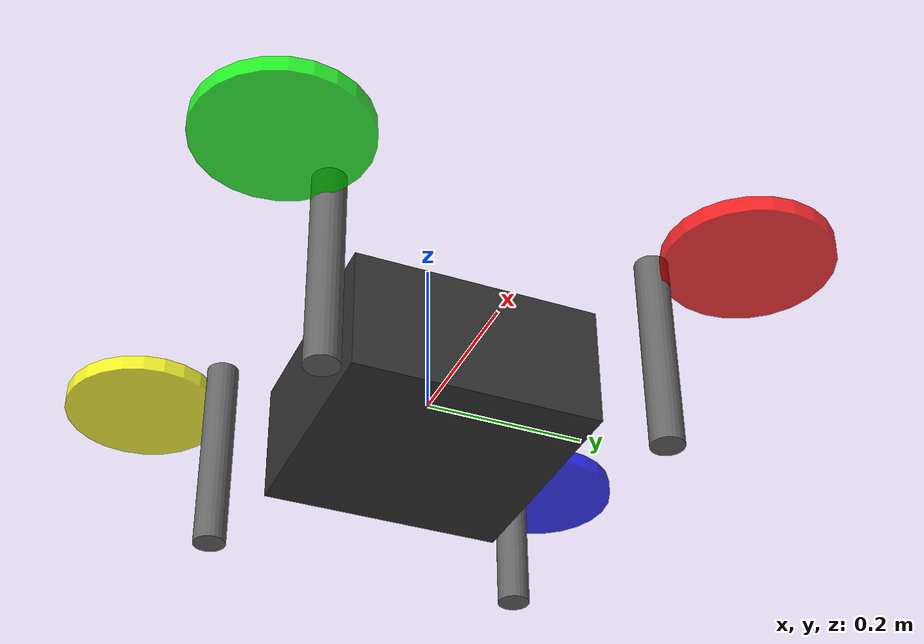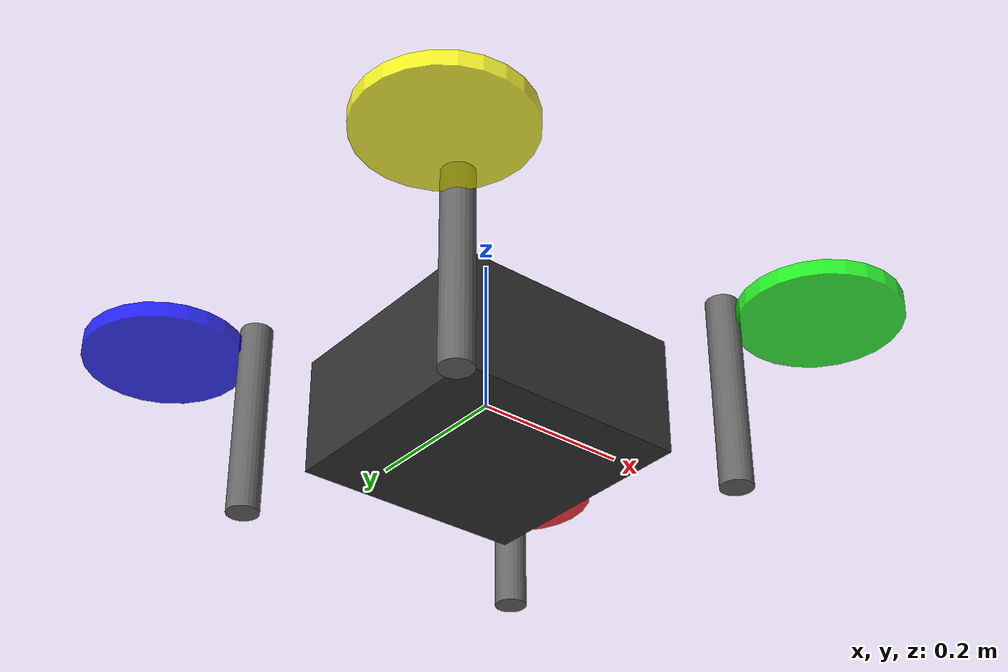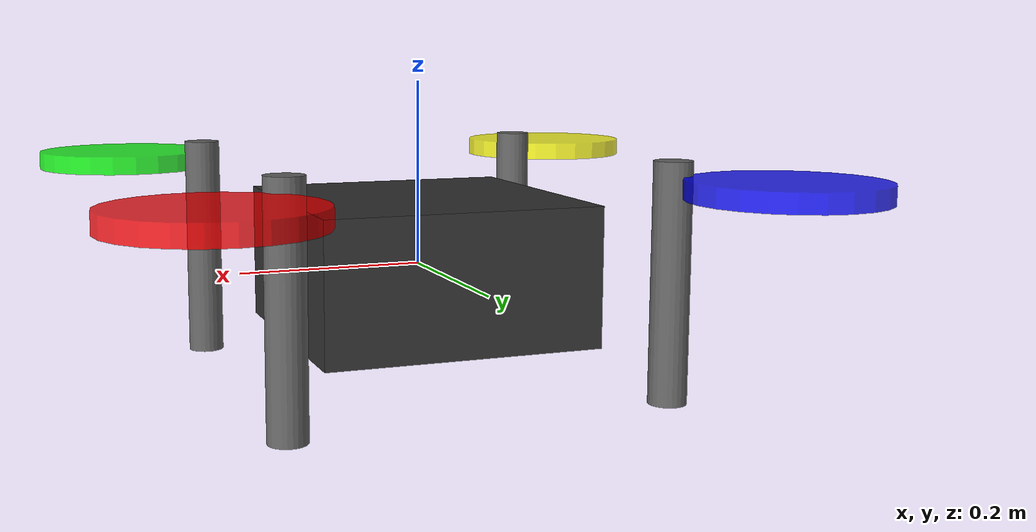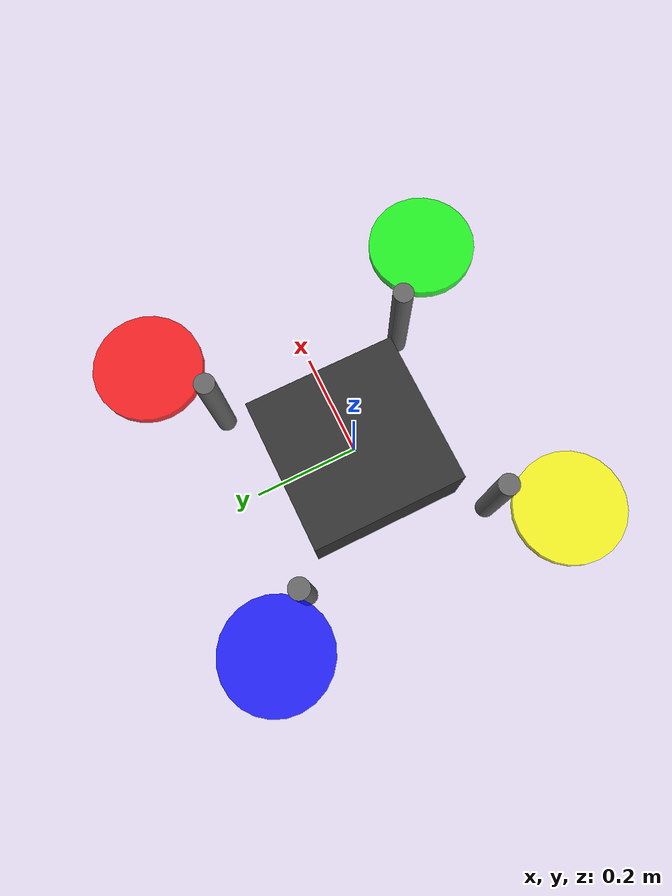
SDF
<?xml version="1.0"?>
<sdf version="1.6">
  <model name="ebsc_quad">
    <static>false</static>
    <link name="base_link">
      <inertial>
        <mass>1.5</mass>
        <inertia>
          <ixx>0.03</ixx>
          <iyy>0.03</iyy>
          <izz>0.04</izz>
          <ixy>0</ixy>
          <ixz>0</ixz>
          <iyz>0</iyz>
        </inertia>
      </inertial>

      <!-- Central fuselage -->
      <visual name="body">
        <geometry>
          <box><size>0.3 0.3 0.15</size></box>
        </geometry>
        <material>
          <ambient>0.1 0.1 0.1 1</ambient>
          <diffuse>0.2 0.2 0.2 1</diffuse>
        </material>
      </visual>

      <collision name="collision">
        <geometry>
          <box><size>0.3 0.3 0.15</size></box>
        </geometry>
      </collision>

      <!-- 4 arms -->
      <visual name="arm_fl">
        <pose>0.2 0.2 0 0 0 0.785</pose>
        <geometry>
          <cylinder><radius>0.02</radius><length>0.25</length></cylinder>
        </geometry>
        <material>
          <ambient>0.3 0.3 0.3 1</ambient>
          <diffuse>0.4 0.4 0.4 1</diffuse>
        </material>
      </visual>

      <visual name="arm_fr">
        <pose>0.2 -0.2 0 0 0 -0.785</pose>
        <geometry>
          <cylinder><radius>0.02</radius><length>0.25</length></cylinder>
        </geometry>
        <material>
          <ambient>0.3 0.3 0.3 1</ambient>
          <diffuse>0.4 0.4 0.4 1</diffuse>
        </material>
      </visual>

      <visual name="arm_bl">
        <pose>-0.2 0.2 0 0 0 -0.785</pose>
        <geometry>
          <cylinder><radius>0.02</radius><length>0.25</length></cylinder>
        </geometry>
        <material>
          <ambient>0.3 0.3 0.3 1</ambient>
          <diffuse>0.4 0.4 0.4 1</diffuse>
        </material>
      </visual>

      <visual name="arm_br">
        <pose>-0.2 -0.2 0 0 0 0.785</pose>
        <geometry>
          <cylinder><radius>0.02</radius><length>0.25</length></cylinder>
        </geometry>
        <material>
          <ambient>0.3 0.3 0.3 1</ambient>
          <diffuse>0.4 0.4 0.4 1</diffuse>
        </material>
      </visual>

      <!-- 4 propellers -->
      <visual name="prop_fl">
        <pose>0.28 0.28 0.1 0 0 0</pose>
        <geometry>
          <cylinder><radius>0.1</radius><length>0.02</length></cylinder>
        </geometry>
        <material>
          <ambient>1 0 0 0.8</ambient>
          <diffuse>1 0 0 0.8</diffuse>
        </material>
      </visual>

      <visual name="prop_fr">
        <pose>0.28 -0.28 0.1 0 0 0</pose>
        <geometry>
          <cylinder><radius>0.1</radius><length>0.02</length></cylinder>
        </geometry>
        <material>
          <ambient>0 1 0 0.8</ambient>
          <diffuse>0 1 0 0.8</diffuse>
        </material>
      </visual>

      <visual name="prop_bl">
        <pose>-0.28 0.28 0.1 0 0 0</pose>
        <geometry>
          <cylinder><radius>0.1</radius><length>0.02</length></cylinder>
        </geometry>
        <material>
          <ambient>0 0 1 0.8</ambient>
          <diffuse>0 0 1 0.8</diffuse>
        </material>
      </visual>

      <visual name="prop_br">
        <pose>-0.28 -0.28 0.1 0 0 0</pose>
        <geometry>
          <cylinder><radius>0.1</radius><length>0.02</length></cylinder>
        </geometry>
        <material>
          <ambient>1 1 0 0.8</ambient>
          <diffuse>1 1 0 0.8</diffuse>
        </material>
      </visual>
    </link>
  </model>
</sdf>
